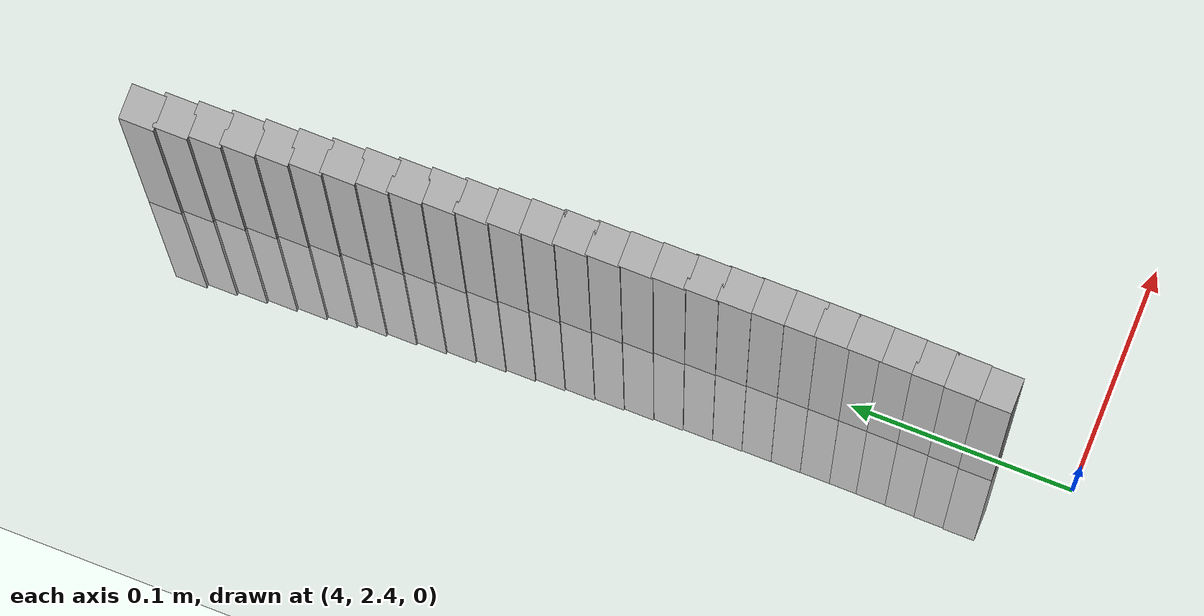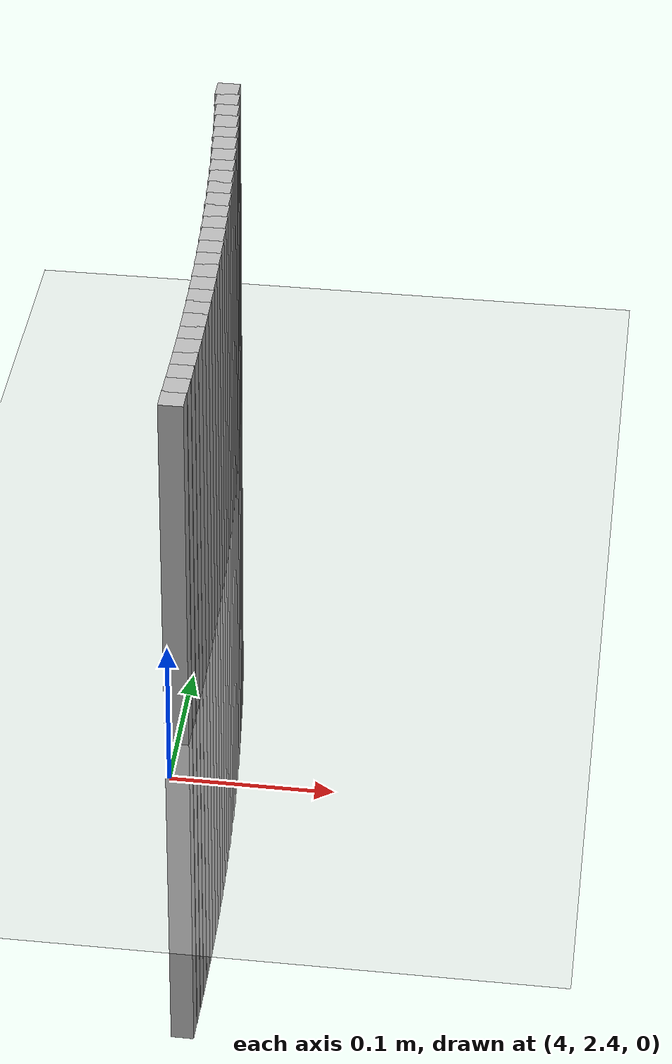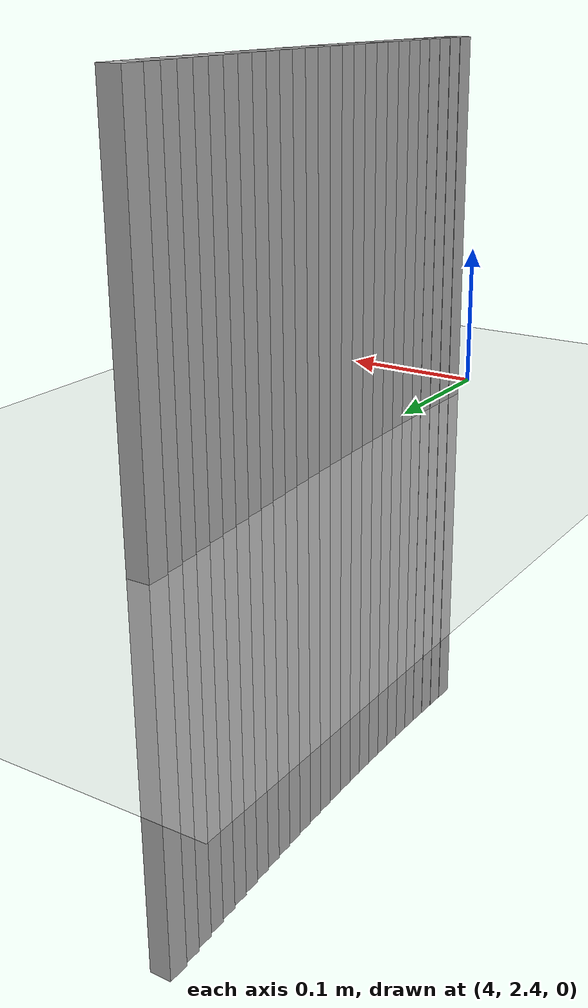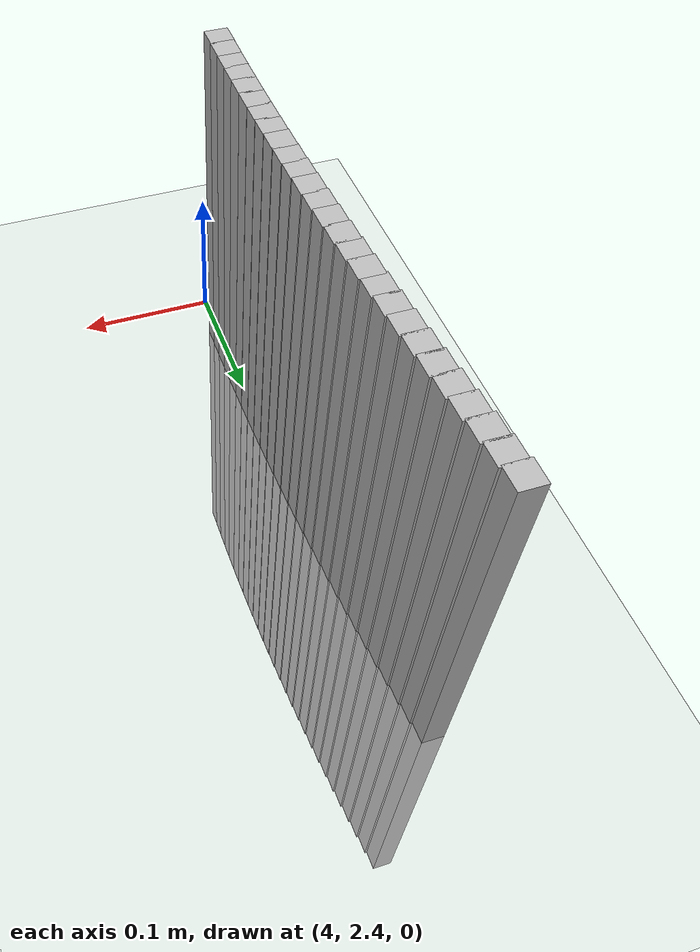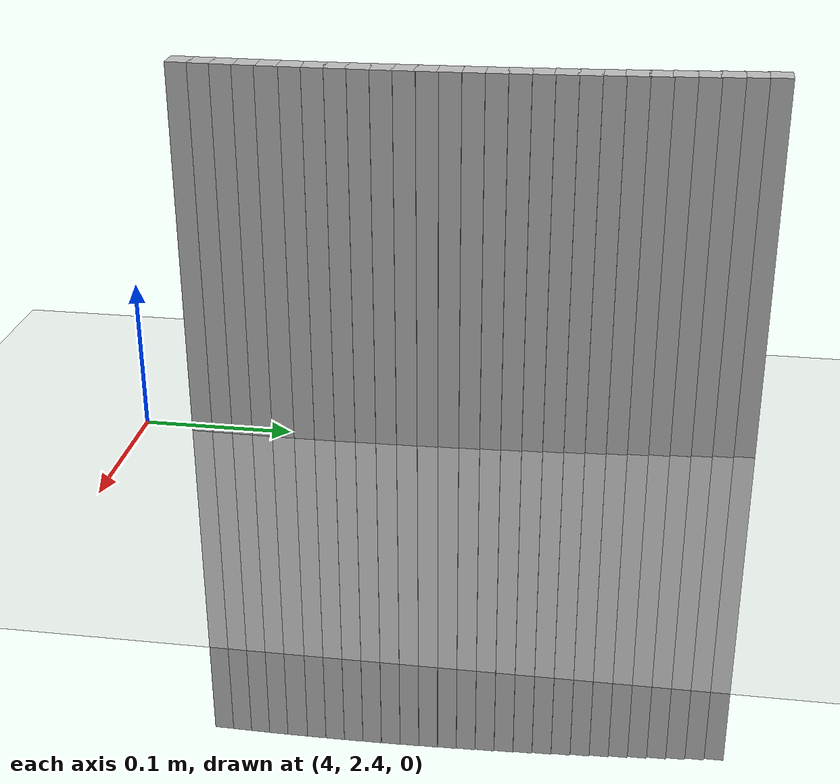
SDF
<sdf version="1.6">
 <world name="base">
  <include><uri>model://sun</uri></include>
  <include><uri>model://ground_plane</uri></include>
  <model name="k404">
   <link name="269_link">
    <collision name="collision_269">
     <pose>3.9817824775939714 2.8012569234184164 0 0 -0 0</pose>
     <geometry><box><size>0.015 0.015 0.50</size></box></geometry>
    </collision>
    <visual name="visual_269">
     <pose>3.9817824775939714 2.8012569234184164 0 0 -0 0</pose>
     <geometry><box><size>0.015 0.015 0.50</size></box></geometry>
    </visual>
   </link>
   <link name="270_link">
    <collision name="collision_270">
     <pose>3.98341781954542 2.787464664896873 0 0 -0 0</pose>
     <geometry><box><size>0.015 0.015 0.50</size></box></geometry>
    </collision>
    <visual name="visual_270">
     <pose>3.98341781954542 2.787464664896873 0 0 -0 0</pose>
     <geometry><box><size>0.015 0.015 0.50</size></box></geometry>
    </visual>
   </link>
   <link name="271_link">
    <collision name="collision_271">
     <pose>3.984976512995876 2.773663534031949 0 0 -0 0</pose>
     <geometry><box><size>0.015 0.015 0.50</size></box></geometry>
    </collision>
    <visual name="visual_271">
     <pose>3.984976512995876 2.773663534031949 0 0 -0 0</pose>
     <geometry><box><size>0.015 0.015 0.50</size></box></geometry>
    </visual>
   </link>
   <link name="272_link">
    <collision name="collision_272">
     <pose>3.986458509837641 2.7598539567833775 0 0 -0 0</pose>
     <geometry><box><size>0.015 0.015 0.50</size></box></geometry>
    </collision>
    <visual name="visual_272">
     <pose>3.986458509837641 2.7598539567833775 0 0 -0 0</pose>
     <geometry><box><size>0.015 0.015 0.50</size></box></geometry>
    </visual>
   </link>
   <link name="273_link">
    <collision name="collision_273">
     <pose>3.987863764330189 2.7460363593715824 0 0 -0 0</pose>
     <geometry><box><size>0.015 0.015 0.50</size></box></geometry>
    </collision>
    <visual name="visual_273">
     <pose>3.987863764330189 2.7460363593715824 0 0 -0 0</pose>
     <geometry><box><size>0.015 0.015 0.50</size></box></geometry>
    </visual>
   </link>
   <link name="274_link">
    <collision name="collision_274">
     <pose>3.989192233101579 2.732211168264523 0 0 -0 0</pose>
     <geometry><box><size>0.015 0.015 0.50</size></box></geometry>
    </collision>
    <visual name="visual_274">
     <pose>3.989192233101579 2.732211168264523 0 0 -0 0</pose>
     <geometry><box><size>0.015 0.015 0.50</size></box></geometry>
    </visual>
   </link>
   <link name="275_link">
    <collision name="collision_275">
     <pose>3.9904438751497944 2.718378810164532 0 0 -0 0</pose>
     <geometry><box><size>0.015 0.015 0.50</size></box></geometry>
    </collision>
    <visual name="visual_275">
     <pose>3.9904438751497944 2.718378810164532 0 0 -0 0</pose>
     <geometry><box><size>0.015 0.015 0.50</size></box></geometry>
    </visual>
   </link>
   <link name="276_link">
    <collision name="collision_276">
     <pose>3.991618651844006 2.7045397119951424 0 0 -0 0</pose>
     <geometry><box><size>0.015 0.015 0.50</size></box></geometry>
    </collision>
    <visual name="visual_276">
     <pose>3.991618651844006 2.7045397119951424 0 0 -0 0</pose>
     <geometry><box><size>0.015 0.015 0.50</size></box></geometry>
    </visual>
   </link>
   <link name="277_link">
    <collision name="collision_277">
     <pose>3.9927165269257694 2.690694300887916 0 0 -0 0</pose>
     <geometry><box><size>0.015 0.015 0.50</size></box></geometry>
    </collision>
    <visual name="visual_277">
     <pose>3.9927165269257694 2.690694300887916 0 0 -0 0</pose>
     <geometry><box><size>0.015 0.015 0.50</size></box></geometry>
    </visual>
   </link>
   <link name="278_link">
    <collision name="collision_278">
     <pose>3.993737466510136 2.6768430041692572 0 0 -0 0</pose>
     <geometry><box><size>0.015 0.015 0.50</size></box></geometry>
    </collision>
    <visual name="visual_278">
     <pose>3.993737466510136 2.6768430041692572 0 0 -0 0</pose>
     <geometry><box><size>0.015 0.015 0.50</size></box></geometry>
    </visual>
   </link>
   <link name="279_link">
    <collision name="collision_279">
     <pose>3.9946814390867074 2.662986249347224 0 0 -0 0</pose>
     <geometry><box><size>0.015 0.015 0.50</size></box></geometry>
    </collision>
    <visual name="visual_279">
     <pose>3.9946814390867074 2.662986249347224 0 0 -0 0</pose>
     <geometry><box><size>0.015 0.015 0.50</size></box></geometry>
    </visual>
   </link>
   <link name="280_link">
    <collision name="collision_280">
     <pose>3.9955484155206014 2.6491244640983345 0 0 -0 0</pose>
     <geometry><box><size>0.015 0.015 0.50</size></box></geometry>
    </collision>
    <visual name="visual_280">
     <pose>3.9955484155206014 2.6491244640983345 0 0 -0 0</pose>
     <geometry><box><size>0.015 0.015 0.50</size></box></geometry>
    </visual>
   </link>
   <link name="281_link">
    <collision name="collision_281">
     <pose>3.9963383690533556 2.6352580762543663 0 0 -0 0</pose>
     <geometry><box><size>0.015 0.015 0.50</size></box></geometry>
    </collision>
    <visual name="visual_281">
     <pose>3.9963383690533556 2.6352580762543663 0 0 -0 0</pose>
     <geometry><box><size>0.015 0.015 0.50</size></box></geometry>
    </visual>
   </link>
   <link name="282_link">
    <collision name="collision_282">
     <pose>3.997051275303751 2.621387513789152 0 0 -0 0</pose>
     <geometry><box><size>0.015 0.015 0.50</size></box></geometry>
    </collision>
    <visual name="visual_282">
     <pose>3.997051275303751 2.621387513789152 0 0 -0 0</pose>
     <geometry><box><size>0.015 0.015 0.50</size></box></geometry>
    </visual>
   </link>
   <link name="283_link">
    <collision name="collision_283">
     <pose>3.997687112268564 2.607513204805371 0 0 -0 0</pose>
     <geometry><box><size>0.015 0.015 0.50</size></box></geometry>
    </collision>
    <visual name="visual_283">
     <pose>3.997687112268564 2.607513204805371 0 0 -0 0</pose>
     <geometry><box><size>0.015 0.015 0.50</size></box></geometry>
    </visual>
   </link>
   <link name="284_link">
    <collision name="collision_284">
     <pose>3.998245860323248 2.5936355775213333 0 0 -0 0</pose>
     <geometry><box><size>0.015 0.015 0.50</size></box></geometry>
    </collision>
    <visual name="visual_284">
     <pose>3.998245860323248 2.5936355775213333 0 0 -0 0</pose>
     <geometry><box><size>0.015 0.015 0.50</size></box></geometry>
    </visual>
   </link>
   <link name="285_link">
    <collision name="collision_285">
     <pose>3.998727502222537 2.579755060257769 0 0 -0 0</pose>
     <geometry><box><size>0.015 0.015 0.50</size></box></geometry>
    </collision>
    <visual name="visual_285">
     <pose>3.998727502222537 2.579755060257769 0 0 -0 0</pose>
     <geometry><box><size>0.015 0.015 0.50</size></box></geometry>
    </visual>
   </link>
   <link name="286_link">
    <collision name="collision_286">
     <pose>3.999132023100979 2.565872081424602 0 0 -0 0</pose>
     <geometry><box><size>0.015 0.015 0.50</size></box></geometry>
    </collision>
    <visual name="visual_286">
     <pose>3.999132023100979 2.565872081424602 0 0 -0 0</pose>
     <geometry><box><size>0.015 0.015 0.50</size></box></geometry>
    </visual>
   </link>
   <link name="287_link">
    <collision name="collision_287">
     <pose>3.9994594104733925 2.551987069507731 0 0 -0 0</pose>
     <geometry><box><size>0.015 0.015 0.50</size></box></geometry>
    </collision>
    <visual name="visual_287">
     <pose>3.9994594104733925 2.551987069507731 0 0 -0 0</pose>
     <geometry><box><size>0.015 0.015 0.50</size></box></geometry>
    </visual>
   </link>
   <link name="288_link">
    <collision name="collision_288">
     <pose>3.999709654235256 2.538100453055805 0 0 -0 0</pose>
     <geometry><box><size>0.015 0.015 0.50</size></box></geometry>
    </collision>
    <visual name="visual_288">
     <pose>3.999709654235256 2.538100453055805 0 0 -0 0</pose>
     <geometry><box><size>0.015 0.015 0.50</size></box></geometry>
    </visual>
   </link>
   <link name="289_link">
    <collision name="collision_289">
     <pose>3.9998827466630162 2.524212660666994 0 0 -0 0</pose>
     <geometry><box><size>0.015 0.015 0.50</size></box></geometry>
    </collision>
    <visual name="visual_289">
     <pose>3.9998827466630162 2.524212660666994 0 0 -0 0</pose>
     <geometry><box><size>0.015 0.015 0.50</size></box></geometry>
    </visual>
   </link>
   <link name="290_link">
    <collision name="collision_290">
     <pose>3.9999786824143277 2.510324120975764 0 0 -0 0</pose>
     <geometry><box><size>0.015 0.015 0.50</size></box></geometry>
    </collision>
    <visual name="visual_290">
     <pose>3.9999786824143277 2.510324120975764 0 0 -0 0</pose>
     <geometry><box><size>0.015 0.015 0.50</size></box></geometry>
    </visual>
   </link>
   <link name="291_link">
    <collision name="collision_291">
     <pose>3.9999974585282185 2.4964352626396438 0 0 -0 0</pose>
     <geometry><box><size>0.015 0.015 0.50</size></box></geometry>
    </collision>
    <visual name="visual_291">
     <pose>3.9999974585282185 2.4964352626396438 0 0 -0 0</pose>
     <geometry><box><size>0.015 0.015 0.50</size></box></geometry>
    </visual>
   </link>
   <link name="292_link">
    <collision name="collision_292">
     <pose>3.99993907442518 2.482546514325999 0 0 -0 0</pose>
     <geometry><box><size>0.015 0.015 0.50</size></box></geometry>
    </collision>
    <visual name="visual_292">
     <pose>3.99993907442518 2.482546514325999 0 0 -0 0</pose>
     <geometry><box><size>0.015 0.015 0.50</size></box></geometry>
    </visual>
   </link>
   <link name="293_link">
    <collision name="collision_293">
     <pose>3.999803531907187 2.468658304698798 0 0 -0 0</pose>
     <geometry><box><size>0.015 0.015 0.50</size></box></geometry>
    </collision>
    <visual name="visual_293">
     <pose>3.999803531907187 2.468658304698798 0 0 -0 0</pose>
     <geometry><box><size>0.015 0.015 0.50</size></box></geometry>
    </visual>
   </link>
   <link name="294_link">
    <collision name="collision_294">
     <pose>3.9995908351576386 2.454771062405384 0 0 -0 0</pose>
     <geometry><box><size>0.015 0.015 0.50</size></box></geometry>
    </collision>
    <visual name="visual_294">
     <pose>3.9995908351576386 2.454771062405384 0 0 -0 0</pose>
     <geometry><box><size>0.015 0.015 0.50</size></box></geometry>
    </visual>
   </link>
   <link name="295_link">
    <collision name="collision_295">
     <pose>3.9993009907412334 2.4408852160632426 0 0 -0 0</pose>
     <geometry><box><size>0.015 0.015 0.50</size></box></geometry>
    </collision>
    <visual name="visual_295">
     <pose>3.9993009907412334 2.4408852160632426 0 0 -0 0</pose>
     <geometry><box><size>0.015 0.015 0.50</size></box></geometry>
    </visual>
   </link>
   <static>true</static>
  </model>
 </world>
</sdf>
